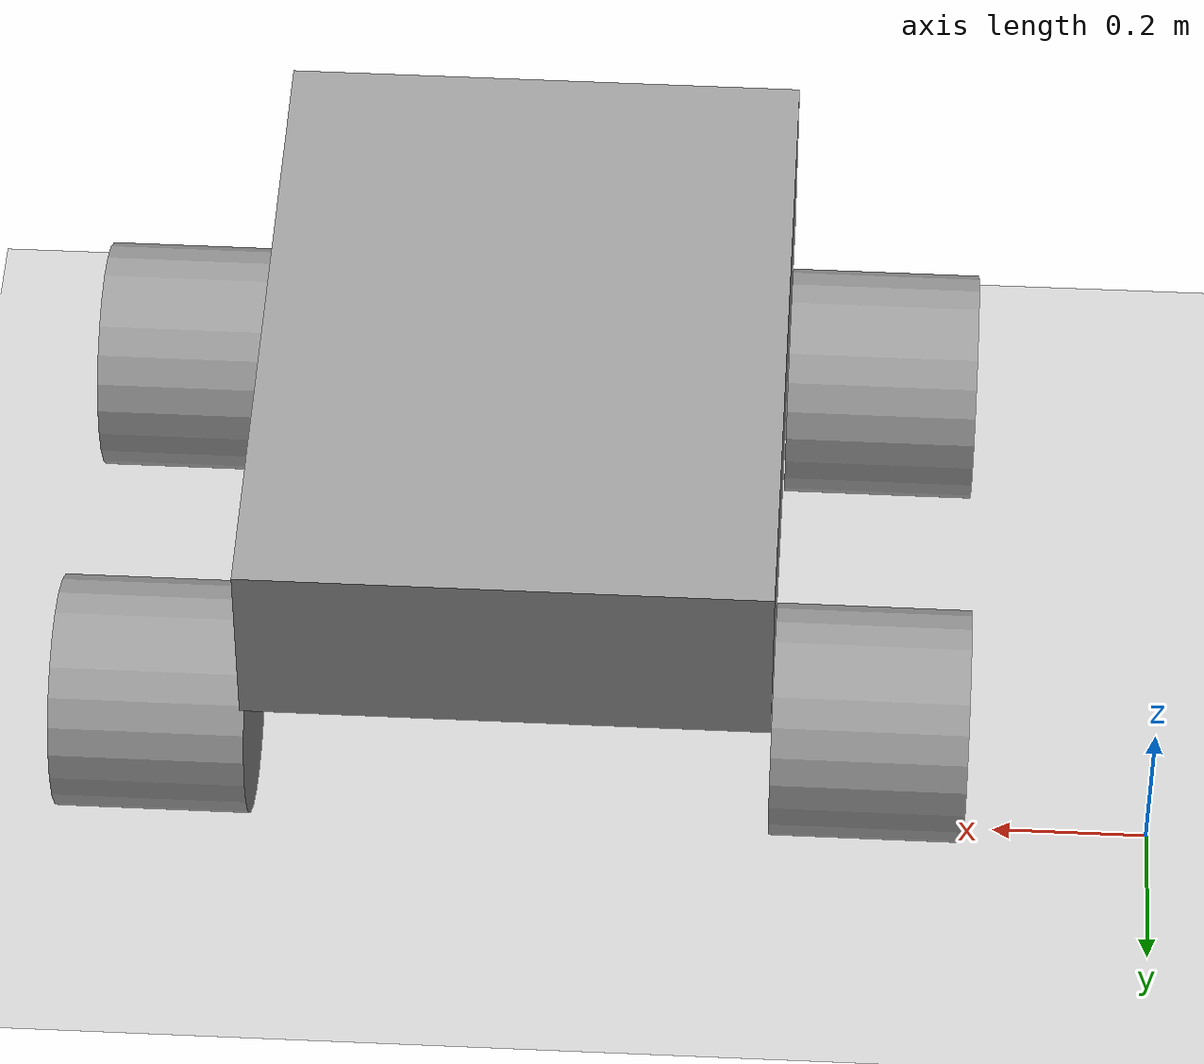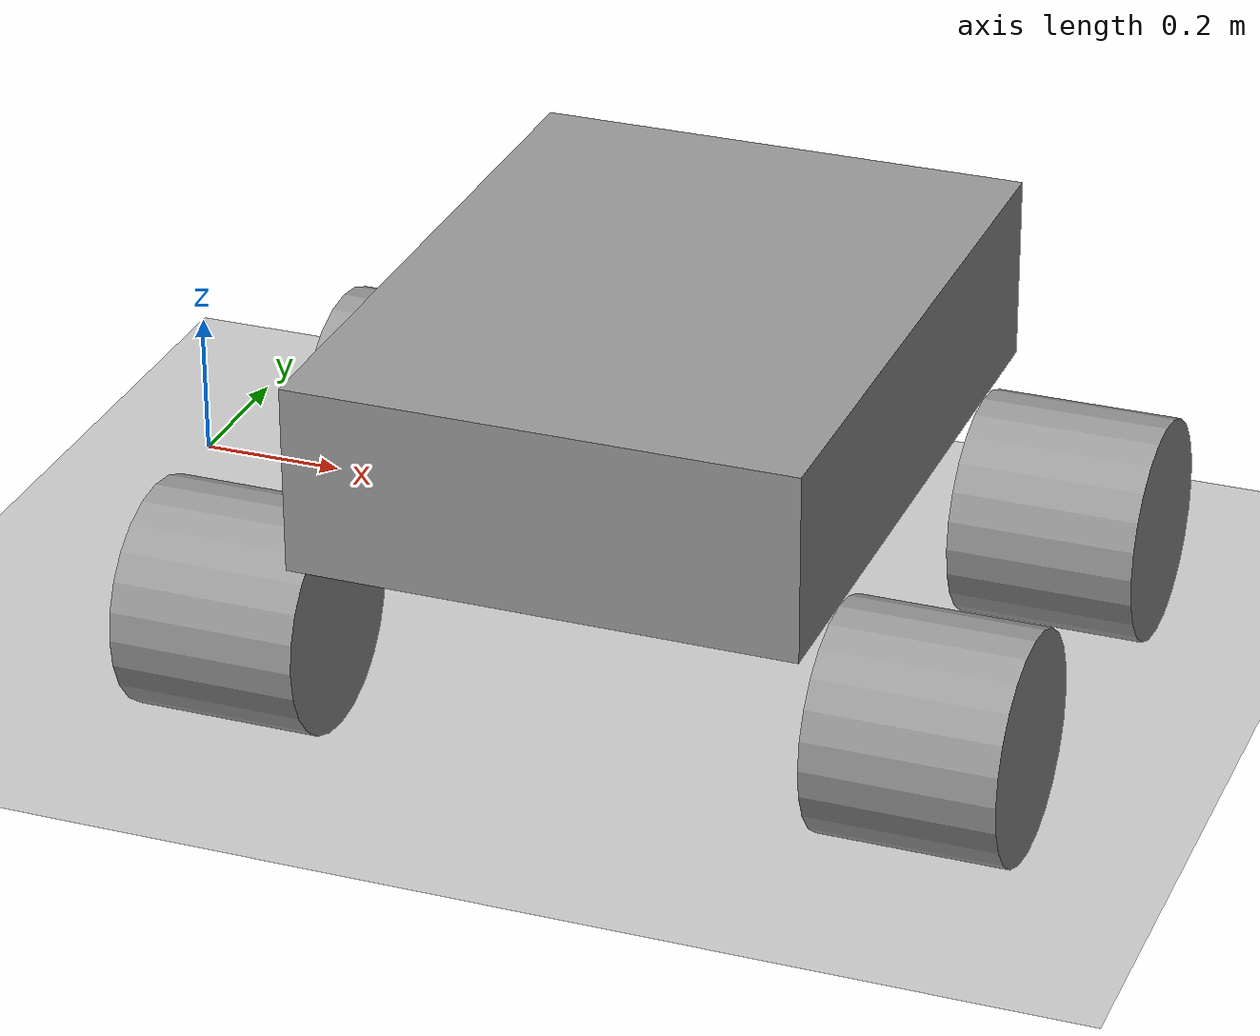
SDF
<sdf version="1.6">
 <world name="default">
  <light name="sun" type="directional">
   <pose>0 0 10 0 -0 0</pose>
   <diffuse>0.8 0.8 0.8 1</diffuse>
   <specular>0.1 0.1 0.1 1</specular>
   <attenuation>
    <range>1000</range>
    <constant>0.9</constant>
    <linear>0.01</linear>
    <quadratic>0.001</quadratic>
   </attenuation>
   <direction>-0.5 0.5 -1</direction>
  </light>
  <model name="ground_plane">
   <static>1</static>
   <link name="link">
    <collision name="collision">
     <geometry><plane><normal>0 0 1</normal><size>100 100</size></plane></geometry>
     <surface><friction><ode><mu>100</mu><mu2>50</mu2></ode></friction></surface>
    </collision>
    <visual name="visual">
     <cast_shadows>0</cast_shadows>
     <geometry><plane><normal>0 0 1</normal><size>100 100</size></plane></geometry>
     <material>
      <script><uri>file://media/materials/scripts/gazebo.material</uri><name>Gazebo/Grey</name></script>
     </material>
    </visual>
   </link>
  </model>
  <gravity>0 0 -9.8</gravity>
  <magnetic_field>6e-06 2.3e-05 -4.2e-05</magnetic_field>
  <atmosphere type="adiabatic"/>
  <physics name="default_physics" default="0" type="ode">
   <max_step_size>0.001</max_step_size>
   <real_time_factor>1</real_time_factor>
   <real_time_update_rate>1000</real_time_update_rate>
  </physics>
  <scene><ambient>0.4 0.4 0.4 1</ambient><background>0.7 0.7 0.7 1</background><shadows>1</shadows></scene>
  <spherical_coordinates>
   <surface_model>EARTH_WGS84</surface_model>
   <latitude_deg>0</latitude_deg>
   <longitude_deg>0</longitude_deg>
   <elevation>0</elevation>
   <heading_deg>0</heading_deg>
  </spherical_coordinates>
  <model name="rover_real_model">
   <link name="link_1">
    <pose>0 0 0.22001 0 -0 0</pose>
    <inertial>
     <mass>50</mass>
     <inertia><ixx>5</ixx><ixy>5</ixy><ixz>5</ixz><iyy>5</iyy><iyz>5</iyz><izz>5</izz></inertia>
    </inertial>
    <visual name="visual">
     <geometry><box><size>0.67 0.9 0.25</size></box></geometry>
     <material>
      <lighting>1</lighting>
      <script><uri>file://media/materials/scripts/gazebo.material</uri><name>Gazebo/Grey</name></script>
      <ambient>0.3 0.3 0.3 1</ambient>
      <diffuse>0.7 0.7 0.7 1</diffuse>
      <specular>0.01 0.01 0.01 1</specular>
      <emissive>0 0 0 1</emissive>
      <shader type="vertex"><normal_map>__default__</normal_map></shader>
     </material>
    </visual>
    <collision name="collision">
     <geometry><box><size>0.67 0.9 0.25</size></box></geometry>
     <surface>
      <friction>
       <ode><mu>1</mu><mu2>1</mu2><fdir1>0 0 0</fdir1><slip1>0</slip1><slip2>0</slip2></ode>
       <torsional>
        <coefficient>1</coefficient>
        <patch_radius>0</patch_radius>
        <surface_radius>0</surface_radius>
        <use_patch_radius>1</use_patch_radius>
        <ode><slip>0</slip></ode>
       </torsional>
      </friction>
      <bounce><restitution_coefficient>0</restitution_coefficient><threshold>1e+06</threshold></bounce>
      <contact>
       <collide_without_contact>0</collide_without_contact>
       <collide_without_contact_bitmask>1</collide_without_contact_bitmask>
       <collide_bitmask>1</collide_bitmask>
       <ode>
        <soft_cfm>0</soft_cfm>
        <soft_erp>0.2</soft_erp>
        <kp>1e+13</kp>
        <kd>1</kd>
        <max_vel>0.01</max_vel>
        <min_depth>0</min_depth>
       </ode>
       <bullet>
        <split_impulse>1</split_impulse>
        <split_impulse_penetration_threshold>-0.01</split_impulse_penetration_threshold>
        <soft_cfm>0</soft_cfm>
        <soft_erp>0.2</soft_erp>
        <kp>1e+13</kp>
        <kd>1</kd>
       </bullet>
      </contact>
     </surface>
    </collision>
    <sensor name="leddar" type="ray">
     <pose>0 -0.45 0 0 0 -1.5707</pose>
     <always_on>1</always_on>
     <visualize>1</visualize>
     <update_rate>30</update_rate>
     <ray>
      <noise><type>gaussian</type><mean>0</mean><stddev>0.1</stddev></noise>
      <scan>
       <horizontal>
        <samples>16</samples>
        <resolution>1</resolution>
        <min_angle>-0.392699</min_angle>
        <max_angle>0.392699</max_angle>
       </horizontal>
       <vertical><samples>1</samples><min_angle>0</min_angle><max_angle>0</max_angle></vertical>
      </scan>
      <range><min>0.05</min><max>50</max><resolution>0.05</resolution></range>
     </ray>
     <plugin name="leddar_plugin" filename="/libleddar_plugin.so"/>
    </sensor>
   </link>
   <link name="link_2">
    <pose>0.460014 -0.3 -0.055002 0 1.5707 0</pose>
    <inertial>
     <mass>2</mass>
     <inertia><ixx>0</ixx><ixy>0</ixy><ixz>0</ixz><iyy>0</iyy><iyz>0</iyz><izz>0</izz></inertia>
    </inertial>
    <visual name="visual">
     <geometry><cylinder><radius>0.15</radius><length>0.25</length></cylinder></geometry>
     <material>
      <lighting>1</lighting>
      <script><uri>file://media/materials/scripts/gazebo.material</uri><name>Gazebo/Grey</name></script>
      <ambient>0.3 0.3 0.3 1</ambient>
      <diffuse>0.7 0.7 0.7 1</diffuse>
      <specular>0.01 0.01 0.01 1</specular>
      <emissive>0 0 0 1</emissive>
      <shader type="vertex"><normal_map>__default__</normal_map></shader>
     </material>
    </visual>
    <collision name="collision">
     <geometry><cylinder><radius>0.15</radius><length>0.25</length></cylinder></geometry>
     <surface>
      <friction>
       <ode><mu>1</mu><mu2>1</mu2><fdir1>0 0 0</fdir1><slip1>0</slip1><slip2>0</slip2></ode>
       <torsional>
        <coefficient>1</coefficient>
        <patch_radius>0</patch_radius>
        <surface_radius>0</surface_radius>
        <use_patch_radius>1</use_patch_radius>
        <ode><slip>0</slip></ode>
       </torsional>
      </friction>
      <bounce><restitution_coefficient>0</restitution_coefficient><threshold>1e+06</threshold></bounce>
      <contact>
       <collide_without_contact>0</collide_without_contact>
       <collide_without_contact_bitmask>1</collide_without_contact_bitmask>
       <collide_bitmask>1</collide_bitmask>
       <ode>
        <soft_cfm>0</soft_cfm>
        <soft_erp>0.2</soft_erp>
        <kp>1e+13</kp>
        <kd>1</kd>
        <max_vel>0.01</max_vel>
        <min_depth>0</min_depth>
       </ode>
       <bullet>
        <split_impulse>1</split_impulse>
        <split_impulse_penetration_threshold>-0.01</split_impulse_penetration_threshold>
        <soft_cfm>0</soft_cfm>
        <soft_erp>0.2</soft_erp>
        <kp>1e+13</kp>
        <kd>1</kd>
       </bullet>
      </contact>
     </surface>
    </collision>
   </link>
   <link name="link_2_clone">
    <pose>0.460014 0.3 -0.055002 0 1.5707 0</pose>
    <inertial>
     <mass>2</mass>
     <inertia><ixx>0</ixx><ixy>0</ixy><ixz>0</ixz><iyy>0</iyy><iyz>0</iyz><izz>0</izz></inertia>
    </inertial>
    <visual name="visual">
     <geometry><cylinder><radius>0.15</radius><length>0.25</length></cylinder></geometry>
     <material>
      <lighting>1</lighting>
      <script><uri>file://media/materials/scripts/gazebo.material</uri><name>Gazebo/Grey</name></script>
      <ambient>0.3 0.3 0.3 1</ambient>
      <diffuse>0.7 0.7 0.7 1</diffuse>
      <specular>0.01 0.01 0.01 1</specular>
      <emissive>0 0 0 1</emissive>
      <shader type="vertex"><normal_map>__default__</normal_map></shader>
     </material>
    </visual>
    <collision name="collision">
     <geometry><cylinder><radius>0.15</radius><length>0.25</length></cylinder></geometry>
     <surface>
      <friction>
       <ode><mu>1</mu><mu2>1</mu2><fdir1>0 0 0</fdir1><slip1>0</slip1><slip2>0</slip2></ode>
       <torsional>
        <coefficient>1</coefficient>
        <patch_radius>0</patch_radius>
        <surface_radius>0</surface_radius>
        <use_patch_radius>1</use_patch_radius>
        <ode><slip>0</slip></ode>
       </torsional>
      </friction>
      <bounce><restitution_coefficient>0</restitution_coefficient><threshold>1e+06</threshold></bounce>
      <contact>
       <collide_without_contact>0</collide_without_contact>
       <collide_without_contact_bitmask>1</collide_without_contact_bitmask>
       <collide_bitmask>1</collide_bitmask>
       <ode>
        <soft_cfm>0</soft_cfm>
        <soft_erp>0.2</soft_erp>
        <kp>1e+13</kp>
        <kd>1</kd>
        <max_vel>0.01</max_vel>
        <min_depth>0</min_depth>
       </ode>
       <bullet>
        <split_impulse>1</split_impulse>
        <split_impulse_penetration_threshold>-0.01</split_impulse_penetration_threshold>
        <soft_cfm>0</soft_cfm>
        <soft_erp>0.2</soft_erp>
        <kp>1e+13</kp>
        <kd>1</kd>
       </bullet>
      </contact>
     </surface>
    </collision>
   </link>
   <link name="link_2_clone_0">
    <pose>-0.460014 0.3 -0.055002 0 1.5707 0</pose>
    <inertial>
     <mass>2</mass>
     <inertia><ixx>0</ixx><ixy>0</ixy><ixz>0</ixz><iyy>0</iyy><iyz>0</iyz><izz>0</izz></inertia>
    </inertial>
    <visual name="visual">
     <geometry><cylinder><radius>0.15</radius><length>0.25</length></cylinder></geometry>
     <material>
      <lighting>1</lighting>
      <script><uri>file://media/materials/scripts/gazebo.material</uri><name>Gazebo/Grey</name></script>
      <ambient>0.3 0.3 0.3 1</ambient>
      <diffuse>0.7 0.7 0.7 1</diffuse>
      <specular>0.01 0.01 0.01 1</specular>
      <emissive>0 0 0 1</emissive>
      <shader type="vertex"><normal_map>__default__</normal_map></shader>
     </material>
    </visual>
    <collision name="collision">
     <geometry><cylinder><radius>0.15</radius><length>0.25</length></cylinder></geometry>
     <surface>
      <friction>
       <ode><mu>1</mu><mu2>1</mu2><fdir1>0 0 0</fdir1><slip1>0</slip1><slip2>0</slip2></ode>
       <torsional>
        <coefficient>1</coefficient>
        <patch_radius>0</patch_radius>
        <surface_radius>0</surface_radius>
        <use_patch_radius>1</use_patch_radius>
        <ode><slip>0</slip></ode>
       </torsional>
      </friction>
      <bounce><restitution_coefficient>0</restitution_coefficient><threshold>1e+06</threshold></bounce>
      <contact>
       <collide_without_contact>0</collide_without_contact>
       <collide_without_contact_bitmask>1</collide_without_contact_bitmask>
       <collide_bitmask>1</collide_bitmask>
       <ode>
        <soft_cfm>0</soft_cfm>
        <soft_erp>0.2</soft_erp>
        <kp>1e+13</kp>
        <kd>1</kd>
        <max_vel>0.01</max_vel>
        <min_depth>0</min_depth>
       </ode>
       <bullet>
        <split_impulse>1</split_impulse>
        <split_impulse_penetration_threshold>-0.01</split_impulse_penetration_threshold>
        <soft_cfm>0</soft_cfm>
        <soft_erp>0.2</soft_erp>
        <kp>1e+13</kp>
        <kd>1</kd>
       </bullet>
      </contact>
     </surface>
    </collision>
   </link>
   <link name="link_2_clone_1">
    <pose>-0.460014 -0.3 -0.055002 0 1.5707 0</pose>
    <inertial>
     <mass>2</mass>
     <inertia><ixx>0</ixx><ixy>0</ixy><ixz>0</ixz><iyy>0</iyy><iyz>0</iyz><izz>0</izz></inertia>
    </inertial>
    <visual name="visual">
     <geometry><cylinder><radius>0.15</radius><length>0.25</length></cylinder></geometry>
     <material>
      <lighting>1</lighting>
      <script><uri>file://media/materials/scripts/gazebo.material</uri><name>Gazebo/Grey</name></script>
      <ambient>0.3 0.3 0.3 1</ambient>
      <diffuse>0.7 0.7 0.7 1</diffuse>
      <specular>0.01 0.01 0.01 1</specular>
      <emissive>0 0 0 1</emissive>
      <shader type="vertex"><normal_map>__default__</normal_map></shader>
     </material>
    </visual>
    <collision name="collision">
     <geometry><cylinder><radius>0.15</radius><length>0.25</length></cylinder></geometry>
     <surface>
      <friction>
       <ode><mu>1</mu><mu2>1</mu2><fdir1>0 0 0</fdir1><slip1>0</slip1><slip2>0</slip2></ode>
       <torsional>
        <coefficient>1</coefficient>
        <patch_radius>0</patch_radius>
        <surface_radius>0</surface_radius>
        <use_patch_radius>1</use_patch_radius>
        <ode><slip>0</slip></ode>
       </torsional>
      </friction>
      <bounce><restitution_coefficient>0</restitution_coefficient><threshold>1e+06</threshold></bounce>
      <contact>
       <collide_without_contact>0</collide_without_contact>
       <collide_without_contact_bitmask>1</collide_without_contact_bitmask>
       <collide_bitmask>1</collide_bitmask>
       <ode>
        <soft_cfm>0</soft_cfm>
        <soft_erp>0.2</soft_erp>
        <kp>1e+13</kp>
        <kd>1</kd>
        <max_vel>0.01</max_vel>
        <min_depth>0</min_depth>
       </ode>
       <bullet>
        <split_impulse>1</split_impulse>
        <split_impulse_penetration_threshold>-0.01</split_impulse_penetration_threshold>
        <soft_cfm>0</soft_cfm>
        <soft_erp>0.2</soft_erp>
        <kp>1e+13</kp>
        <kd>1</kd>
       </bullet>
      </contact>
     </surface>
    </collision>
   </link>
   <joint name="link_1_JOINT_0" type="revolute">
    <parent>link_1</parent>
    <child>link_2_clone</child>
    <axis>
     <xyz>0 0 1</xyz>
     <use_parent_model_frame>0</use_parent_model_frame>
     <limit>
      <lower>-1.79769e+308</lower>
      <upper>1.79769e+308</upper>
      <effort>-1</effort>
      <velocity>-1</velocity>
     </limit>
     <dynamics>
      <spring_reference>0</spring_reference>
      <spring_stiffness>0</spring_stiffness>
      <damping>0</damping>
     </dynamics>
    </axis>
    <physics>
     <ode><limit><cfm>0</cfm><erp>0.2</erp></limit><suspension><cfm>0</cfm><erp>0.2</erp></suspension></ode>
    </physics>
   </joint>
   <joint name="link_1_JOINT_1" type="revolute">
    <parent>link_1</parent>
    <child>link_2</child>
    <axis>
     <xyz>0 0 1</xyz>
     <use_parent_model_frame>0</use_parent_model_frame>
     <limit>
      <lower>-1.79769e+308</lower>
      <upper>1.79769e+308</upper>
      <effort>-1</effort>
      <velocity>-1</velocity>
     </limit>
     <dynamics>
      <spring_reference>0</spring_reference>
      <spring_stiffness>0</spring_stiffness>
      <damping>0</damping>
     </dynamics>
    </axis>
    <physics>
     <ode><limit><cfm>0</cfm><erp>0.2</erp></limit><suspension><cfm>0</cfm><erp>0.2</erp></suspension></ode>
    </physics>
   </joint>
   <joint name="link_1_JOINT_2" type="revolute">
    <parent>link_1</parent>
    <child>link_2_clone_0</child>
    <axis>
     <xyz>0 0 1</xyz>
     <use_parent_model_frame>0</use_parent_model_frame>
     <limit>
      <lower>-1.79769e+308</lower>
      <upper>1.79769e+308</upper>
      <effort>-1</effort>
      <velocity>-1</velocity>
     </limit>
     <dynamics>
      <spring_reference>0</spring_reference>
      <spring_stiffness>0</spring_stiffness>
      <damping>0</damping>
     </dynamics>
    </axis>
    <physics>
     <ode><limit><cfm>0</cfm><erp>0.2</erp></limit><suspension><cfm>0</cfm><erp>0.2</erp></suspension></ode>
    </physics>
   </joint>
   <joint name="link_1_JOINT_3" type="revolute">
    <parent>link_1</parent>
    <child>link_2_clone_1</child>
    <axis>
     <xyz>0 0 1</xyz>
     <use_parent_model_frame>0</use_parent_model_frame>
     <limit>
      <lower>-1.79769e+308</lower>
      <upper>1.79769e+308</upper>
      <effort>-1</effort>
      <velocity>-1</velocity>
     </limit>
     <dynamics>
      <spring_reference>0</spring_reference>
      <spring_stiffness>0</spring_stiffness>
      <damping>0</damping>
     </dynamics>
    </axis>
    <physics>
     <ode><limit><cfm>0</cfm><erp>0.2</erp></limit><suspension><cfm>0</cfm><erp>0.2</erp></suspension></ode>
    </physics>
   </joint>
   <static>0</static>
   <plugin name="location_plugin" filename="/libgps_plugin.so"/>
   <plugin name="rover_plugin" filename="/librover_plugin.so"/>
   <plugin name="rover_gps_plugin" filename="/libhector_gazebo_ros_gps.so">
    <frameId>map</frameId>
    <accelDriftFrequency>0</accelDriftFrequency>
    <accelDrift>0</accelDrift>
    <accelGaussianNoise>0</accelGaussianNoise>
    <accelScaleError>0</accelScaleError>
    <rateDriftFrequency>0</rateDriftFrequency>
    <rateDrift>0</rateDrift>
    <rateGaussianNoise>0</rateGaussianNoise>
    <rateScaleError>0</rateScaleError>
    <yawDriftFrequency>0</yawDriftFrequency>
    <yawDrift>0</yawDrift>
    <yawGaussianNoise>0</yawGaussianNoise>
    <yawScaleError>0</yawScaleError>
   </plugin>
   <plugin name="rover_gps_plugin" filename="/libhector_gazebo_ros_magnetic.so"><frameId>rover</frameId></plugin>
   <plugin name="rover_imu_plugin" filename="/libhector_gazebo_ros_imu.so"><frameID>rover</frameID></plugin>
   <pose>0.82376 -0.348466 0.20501 1e-06 6e-06 -0.002512</pose>
  </model>
 </world>
</sdf>
